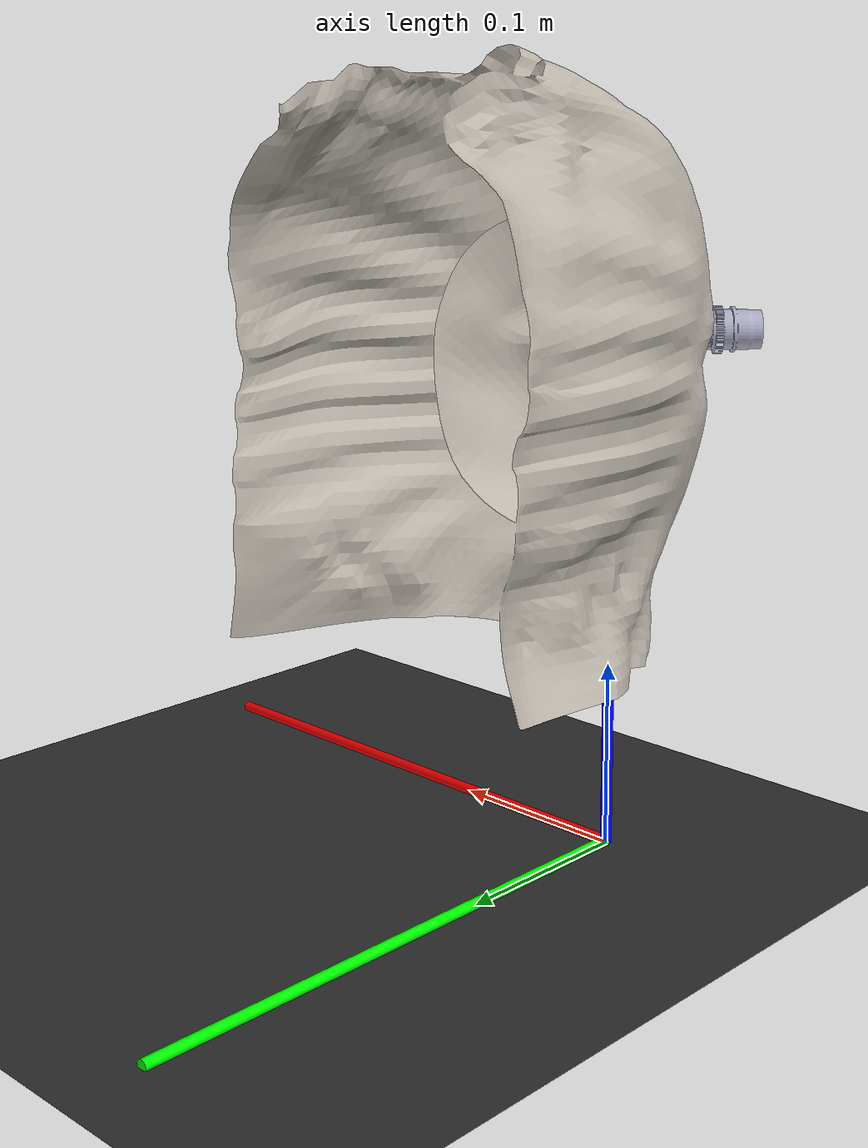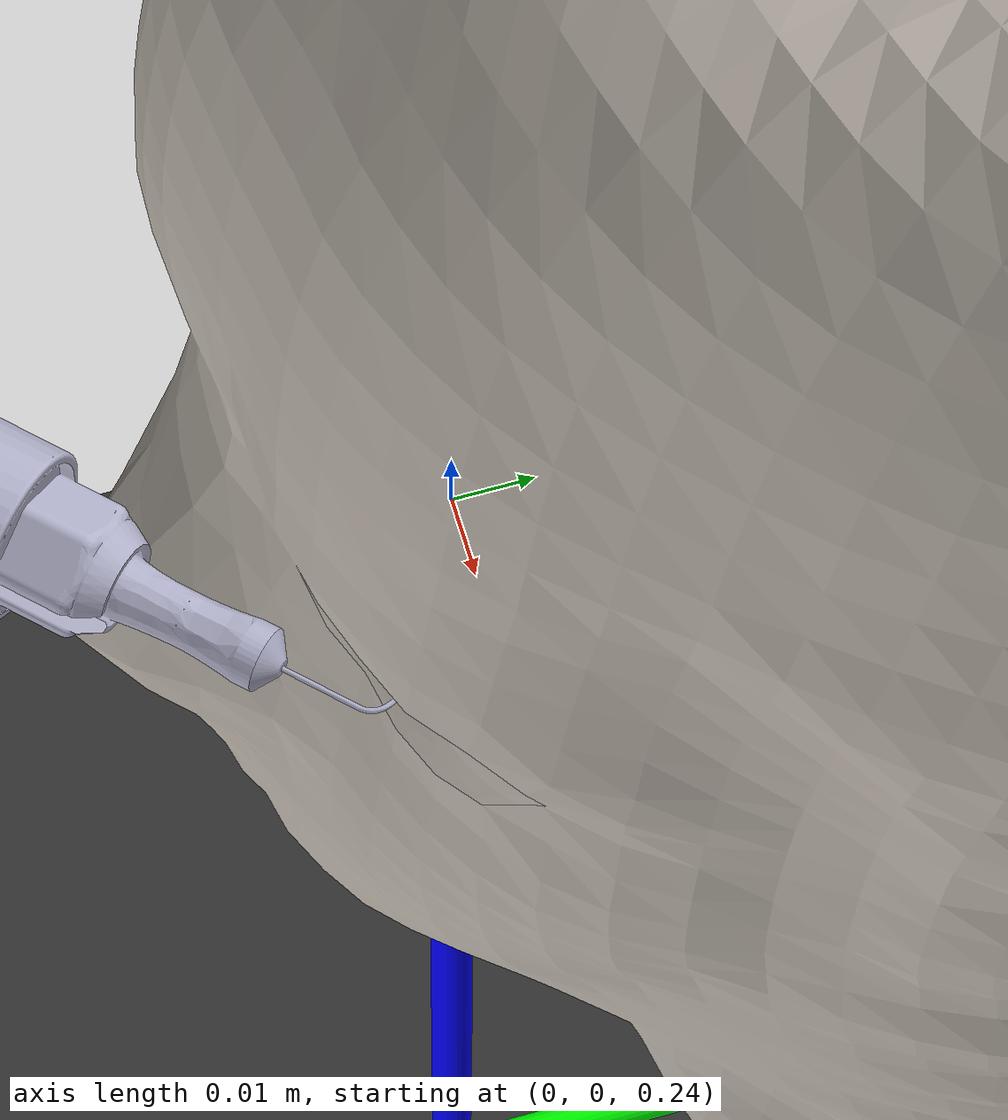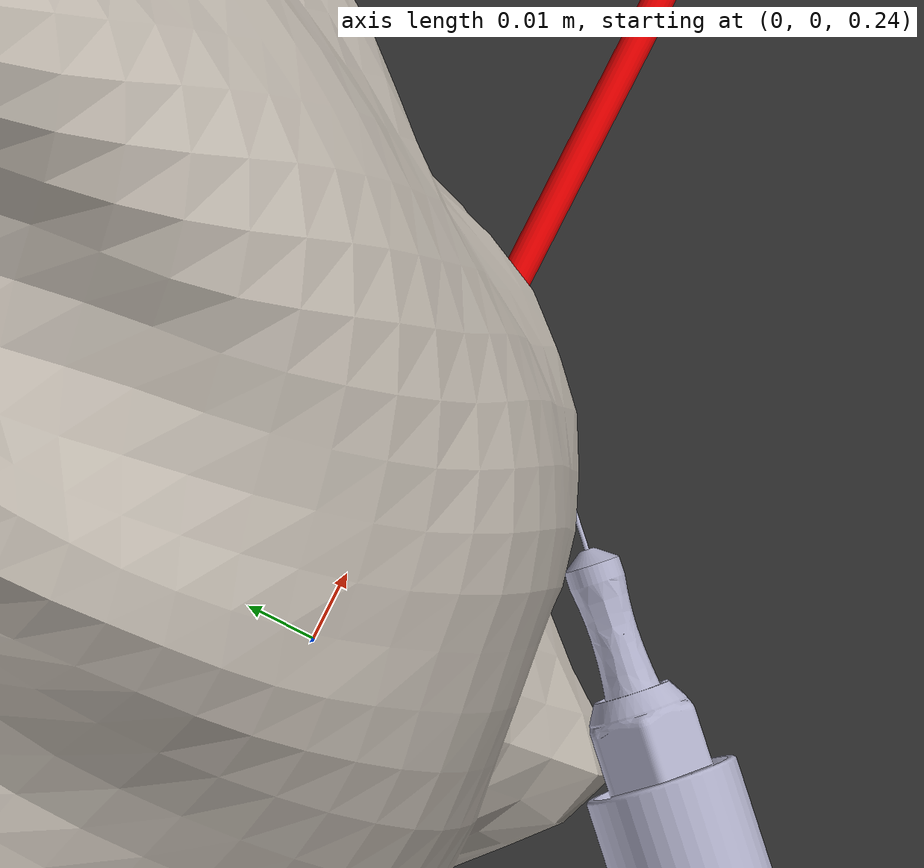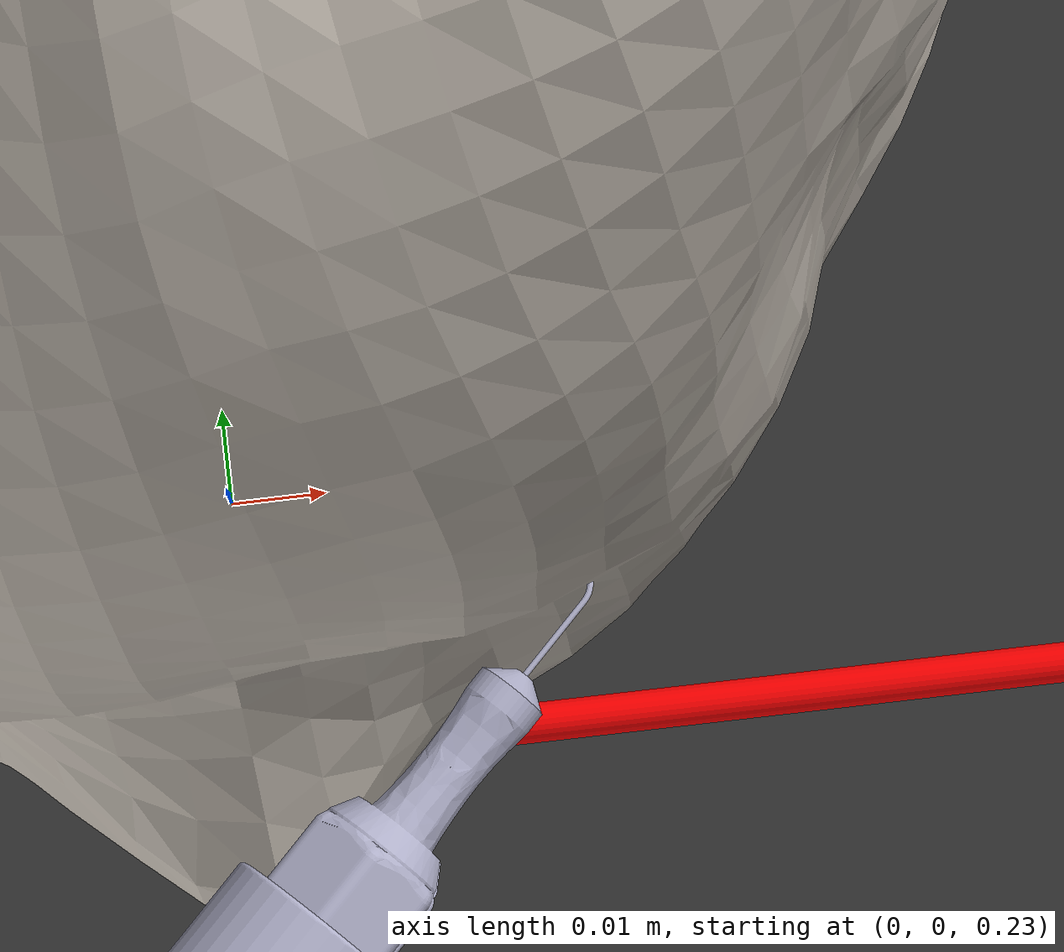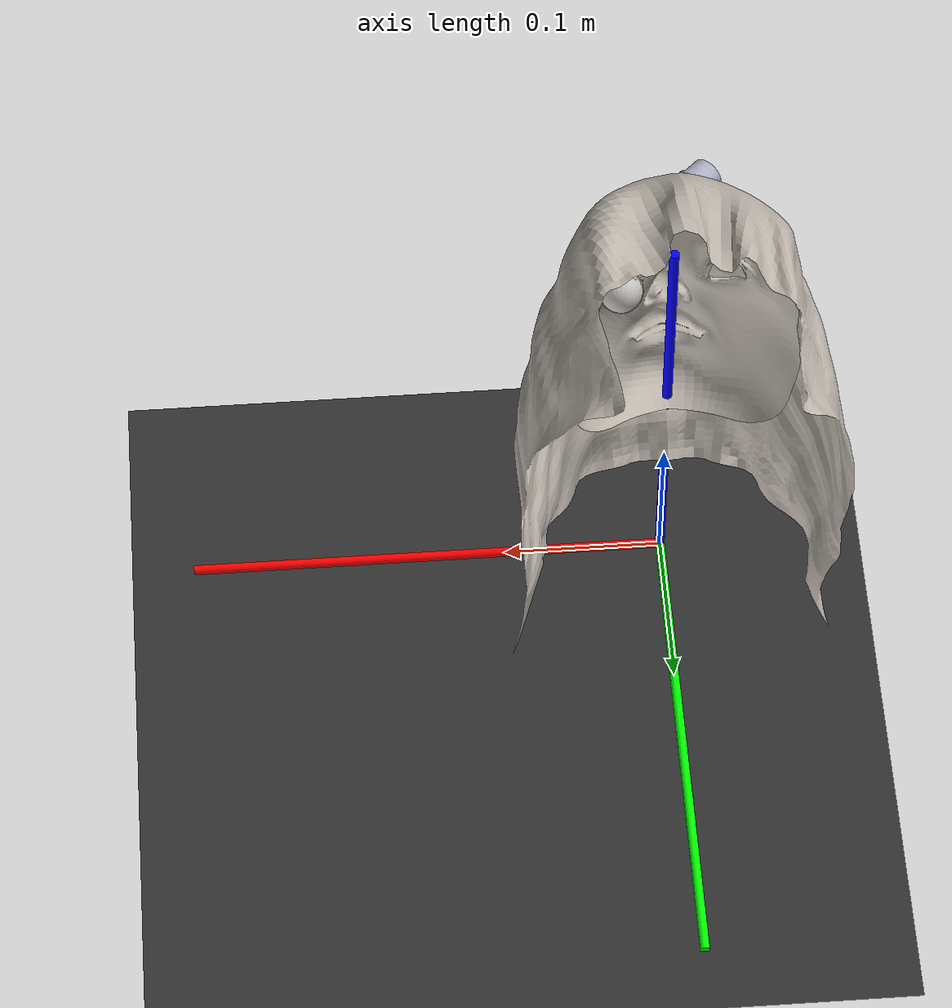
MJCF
<mujoco model="Eye Visualization">
  <compiler angle="degree" meshdir="../meshes" texturedir="../textures"/>

  <!-- Include shared assets -->
  <include file="eye_assets.xml"/>

  <!-- Include physics parameters -->
  <include file="eye_physics.xml"/>

  <!-- Include coordinate axes -->
  <include file="eye_axes.xml"/>

  <!-- Include lens visualization (trajectory markers) -->
  <include file="lens_visualization_projected.xml"/>

  <visual>
    <global offwidth="1920" offheight="1080"/>
    <quality shadowsize="4096"/>
  </visual>

  <worldbody>
    <!-- Lighting setup -->
    <light name="top_light" pos="0 0 5" dir="0 0 -1" diffuse="1 1 1"/>
    <light name="side_light" pos="1 0 1" dir="-1 0 -0.5" diffuse="0.5 0.5 0.5"/>

    <!-- Ground plane -->
    <geom type="plane" size="1 1 0.1" rgba="0.2 0.2 0.2 1"/>
  </worldbody>

  <!-- Include shared eye body -->
  <include file="eye_body.xml"/>
</mujoco>

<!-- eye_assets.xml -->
<mujoco>
  <!-- Shared assets for eye scene -->
  <asset>
    <!-- Load eye component meshes -->
    <mesh name="cornea" file="Cornea_L.obj"/>
    <mesh name="eye_interior" file="EyeInterior_L.obj"/>
    <mesh name="eye" file="Eye_L.obj"/>
    <mesh name="eye_wet" file="EyeWet_L.obj"/>
    <mesh name="lens" file="Lens_L_extracted.obj"/>
    <mesh name="inner_eyelid" file="Inner_Eyelid_L.obj"/>
    <mesh name="tear_duct" file="TearDuct_L.obj"/>
    <mesh name="cloth" file="Cloth_L.obj"/>
    <mesh name="face" file="Face_L.obj"/>

    <!-- Load surgical tool -->
    <mesh name="diathermic_tip" file="tools/diathermic_tip.obj" scale="0.001 0.001 0.001"/>

    <!-- Textures -->
    <texture name="lens_texture" type="2d" file="lens_uv_map.png"/>
    <texture name="eye_texture" type="2d" file="INNER_EYE_1_Base_color.png"/>
    <texture name="face_texture" type="2d" file="Eye-Face_Medium02.png"/>
    <texture name="cloth_texture" type="2d" file="Cloth_Color.png"/>

    <!-- Materials -->
    <material name="lens_mat" texture="lens_texture" specular="0.5" shininess="0.8"/>
    <material name="eye_mat" texture="eye_texture" specular="0.3" shininess="0.5"/>
    <material name="cornea_mat" rgba="0.9 0.95 1.0 0.3" specular="1.0" shininess="1.0"/>
    <material name="eyelid_mat" rgba="0.95 0.8 0.75 1.0"/>
    <material name="wet_mat" rgba="1.0 1.0 1.0 0.1" specular="1.0" shininess="1.0"/>
    <material name="cloth_mat" texture="cloth_texture" specular="0.2" shininess="0.35" reflectance="0.0"/>
    <material name="face_mat" texture="face_texture" specular="0.3" shininess="0.3"/>
    <material name="tool_mat" rgba="0.7 0.7 0.8 1.0" specular="0.8" shininess="0.9"/>
  </asset>
</mujoco>

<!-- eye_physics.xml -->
<mujoco>
  <!-- Physics simulation parameters -->
  <option timestep="0.5" gravity="0 0 -9.81">
    <flag contact="enable"/>
  </option>
</mujoco>

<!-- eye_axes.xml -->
<mujoco>
  <!-- Coordinate axes visualization -->
  <worldbody>
    <geom name="x_axis" type="cylinder" size="0.003 0.15" pos="0.15 0 0.001"
          euler="0 90 0" rgba="1 0 0 1" contype="0" conaffinity="0"/>
    <geom name="y_axis" type="cylinder" size="0.003 0.15" pos="0 0.15 0.001"
          euler="90 0 0" rgba="0 1 0 1" contype="0" conaffinity="0"/>
    <geom name="z_axis" type="cylinder" size="0.003 0.15" pos="0 0 0.15"
          euler="0 0 0" rgba="0 0 1 1" contype="0" conaffinity="0"/>
  </worldbody>
</mujoco>

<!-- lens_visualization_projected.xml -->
<mujoco>
  <worldbody>
    <!-- LENS VISUALIZATION - PROJECTED TRAJECTORY ONLY -->
    <!-- Lens geometric center -->
    <body name="lens_center_marker" pos="0.030893 -0.007080 0.270276">
      <geom name="lens_center_sphere" type="sphere" size="0.0002" rgba="0 1 0 0.8" contype="0" conaffinity="0"/>
    </body>

    <!-- Projected trajectory points (100 points) -->
    <body name="trajectory_point_0" pos="0.030900 -0.007950 0.273375">
      <geom name="traj_marker_0" type="sphere" size="0.0001" rgba="1 0 1 0.8" contype="0" conaffinity="0"/>
    </body>
    <body name="trajectory_point_1" pos="0.031175 -0.007950 0.273350">
      <geom name="traj_marker_1" type="sphere" size="0.0001" rgba="1 0 1 0.8" contype="0" conaffinity="0"/>
    </body>
    <body name="trajectory_point_2" pos="0.031175 -0.007950 0.273350">
      <geom name="traj_marker_2" type="sphere" size="0.0001" rgba="1 0 1 0.8" contype="0" conaffinity="0"/>
    </body>
    <body name="trajectory_point_3" pos="0.031525 -0.007950 0.273325">
      <geom name="traj_marker_3" type="sphere" size="0.0001" rgba="1 0 1 0.8" contype="0" conaffinity="0"/>
    </body>
    <body name="trajectory_point_4" pos="0.031775 -0.007950 0.273250">
      <geom name="traj_marker_4" type="sphere" size="0.0001" rgba="1 0 1 0.8" contype="0" conaffinity="0"/>
    </body>
    <body name="trajectory_point_5" pos="0.031775 -0.007950 0.273250">
      <geom name="traj_marker_5" type="sphere" size="0.0001" rgba="1 0 1 0.8" contype="0" conaffinity="0"/>
    </body>
    <body name="trajectory_point_6" pos="0.032100 -0.007950 0.273150">
      <geom name="traj_marker_6" type="sphere" size="0.0001" rgba="1 0 1 0.8" contype="0" conaffinity="0"/>
    </body>
    <body name="trajectory_point_7" pos="0.032325 -0.007950 0.273025">
      <geom name="traj_marker_7" type="sphere" size="0.0001" rgba="1 0 1 0.8" contype="0" conaffinity="0"/>
    </body>
    <body name="trajectory_point_8" pos="0.032325 -0.007950 0.273025">
      <geom name="traj_marker_8" type="sphere" size="0.0001" rgba="1 0 1 0.8" contype="0" conaffinity="0"/>
    </body>
    <body name="trajectory_point_9" pos="0.032625 -0.007950 0.272875">
      <geom name="traj_marker_9" type="sphere" size="0.0001" rgba="1 0 1 0.8" contype="0" conaffinity="0"/>
    </body>
    <body name="trajectory_point_10" pos="0.032850 -0.007950 0.272700">
      <geom name="traj_marker_10" type="sphere" size="0.0001" rgba="1 0 1 0.8" contype="0" conaffinity="0"/>
    </body>
    <body name="trajectory_point_11" pos="0.032850 -0.007950 0.272700">
      <geom name="traj_marker_11" type="sphere" size="0.0001" rgba="1 0 1 0.8" contype="0" conaffinity="0"/>
    </body>
    <body name="trajectory_point_12" pos="0.033100 -0.007950 0.272475">
      <geom name="traj_marker_12" type="sphere" size="0.0001" rgba="1 0 1 0.8" contype="0" conaffinity="0"/>
    </body>
    <body name="trajectory_point_13" pos="0.033250 -0.007950 0.272275">
      <geom name="traj_marker_13" type="sphere" size="0.0001" rgba="1 0 1 0.8" contype="0" conaffinity="0"/>
    </body>
    <body name="trajectory_point_14" pos="0.033250 -0.007950 0.272275">
      <geom name="traj_marker_14" type="sphere" size="0.0001" rgba="1 0 1 0.8" contype="0" conaffinity="0"/>
    </body>
    <body name="trajectory_point_15" pos="0.033475 -0.007950 0.272000">
      <geom name="traj_marker_15" type="sphere" size="0.0001" rgba="1 0 1 0.8" contype="0" conaffinity="0"/>
    </body>
    <body name="trajectory_point_16" pos="0.033475 -0.007950 0.272000">
      <geom name="traj_marker_16" type="sphere" size="0.0001" rgba="1 0 1 0.8" contype="0" conaffinity="0"/>
    </body>
    <body name="trajectory_point_17" pos="0.033625 -0.007950 0.271775">
      <geom name="traj_marker_17" type="sphere" size="0.0001" rgba="1 0 1 0.8" contype="0" conaffinity="0"/>
    </body>
    <body name="trajectory_point_18" pos="0.033775 -0.007950 0.271475">
      <geom name="traj_marker_18" type="sphere" size="0.0001" rgba="1 0 1 0.8" contype="0" conaffinity="0"/>
    </body>
    <body name="trajectory_point_19" pos="0.033775 -0.007950 0.271475">
      <geom name="traj_marker_19" type="sphere" size="0.0001" rgba="1 0 1 0.8" contype="0" conaffinity="0"/>
    </body>
    <body name="trajectory_point_20" pos="0.033850 -0.007950 0.271200">
      <geom name="traj_marker_20" type="sphere" size="0.0001" rgba="1 0 1 0.8" contype="0" conaffinity="0"/>
    </body>
    <body name="trajectory_point_21" pos="0.033950 -0.007950 0.270875">
      <geom name="traj_marker_21" type="sphere" size="0.0001" rgba="1 0 1 0.8" contype="0" conaffinity="0"/>
    </body>
    <body name="trajectory_point_22" pos="0.033950 -0.007950 0.270875">
      <geom name="traj_marker_22" type="sphere" size="0.0001" rgba="1 0 1 0.8" contype="0" conaffinity="0"/>
    </body>
    <body name="trajectory_point_23" pos="0.033975 -0.007950 0.270625">
      <geom name="traj_marker_23" type="sphere" size="0.0001" rgba="1 0 1 0.8" contype="0" conaffinity="0"/>
    </body>
    <body name="trajectory_point_24" pos="0.034025 -0.007950 0.270300">
      <geom name="traj_marker_24" type="sphere" size="0.0001" rgba="1 0 1 0.8" contype="0" conaffinity="0"/>
    </body>
    <body name="trajectory_point_25" pos="0.034025 -0.007950 0.270300">
      <geom name="traj_marker_25" type="sphere" size="0.0001" rgba="1 0 1 0.8" contype="0" conaffinity="0"/>
    </body>
    <body name="trajectory_point_26" pos="0.034000 -0.007950 0.270025">
      <geom name="traj_marker_26" type="sphere" size="0.0001" rgba="1 0 1 0.8" contype="0" conaffinity="0"/>
    </body>
    <body name="trajectory_point_27" pos="0.033950 -0.007950 0.269675">
      <geom name="traj_marker_27" type="sphere" size="0.0001" rgba="1 0 1 0.8" contype="0" conaffinity="0"/>
    </body>
    <body name="trajectory_point_28" pos="0.033950 -0.007950 0.269675">
      <geom name="traj_marker_28" type="sphere" size="0.0001" rgba="1 0 1 0.8" contype="0" conaffinity="0"/>
    </body>
    <body name="trajectory_point_29" pos="0.033875 -0.007950 0.269425">
      <geom name="traj_marker_29" type="sphere" size="0.0001" rgba="1 0 1 0.8" contype="0" conaffinity="0"/>
    </body>
    <body name="trajectory_point_30" pos="0.033875 -0.007950 0.269425">
      <geom name="traj_marker_30" type="sphere" size="0.0001" rgba="1 0 1 0.8" contype="0" conaffinity="0"/>
    </body>
    <body name="trajectory_point_31" pos="0.033775 -0.007950 0.269100">
      <geom name="traj_marker_31" type="sphere" size="0.0001" rgba="1 0 1 0.8" contype="0" conaffinity="0"/>
    </body>
    <body name="trajectory_point_32" pos="0.033625 -0.007950 0.268850">
      <geom name="traj_marker_32" type="sphere" size="0.0001" rgba="1 0 1 0.8" contype="0" conaffinity="0"/>
    </body>
    <body name="trajectory_point_33" pos="0.033625 -0.007950 0.268850">
      <geom name="traj_marker_33" type="sphere" size="0.0001" rgba="1 0 1 0.8" contype="0" conaffinity="0"/>
    </body>
    <body name="trajectory_point_34" pos="0.033475 -0.007950 0.268550">
      <geom name="traj_marker_34" type="sphere" size="0.0001" rgba="1 0 1 0.8" contype="0" conaffinity="0"/>
    </body>
    <body name="trajectory_point_35" pos="0.033325 -0.007950 0.268350">
      <geom name="traj_marker_35" type="sphere" size="0.0001" rgba="1 0 1 0.8" contype="0" conaffinity="0"/>
    </body>
    <body name="trajectory_point_36" pos="0.033325 -0.007950 0.268350">
      <geom name="traj_marker_36" type="sphere" size="0.0001" rgba="1 0 1 0.8" contype="0" conaffinity="0"/>
    </body>
    <body name="trajectory_point_37" pos="0.033100 -0.007950 0.268075">
      <geom name="traj_marker_37" type="sphere" size="0.0001" rgba="1 0 1 0.8" contype="0" conaffinity="0"/>
    </body>
    <body name="trajectory_point_38" pos="0.033100 -0.007950 0.268075">
      <geom name="traj_marker_38" type="sphere" size="0.0001" rgba="1 0 1 0.8" contype="0" conaffinity="0"/>
    </body>
    <body name="trajectory_point_39" pos="0.032875 -0.007950 0.267900">
      <geom name="traj_marker_39" type="sphere" size="0.0001" rgba="1 0 1 0.8" contype="0" conaffinity="0"/>
    </body>
    <body name="trajectory_point_40" pos="0.032625 -0.007950 0.267700">
      <geom name="traj_marker_40" type="sphere" size="0.0001" rgba="1 0 1 0.8" contype="0" conaffinity="0"/>
    </body>
    <body name="trajectory_point_41" pos="0.032625 -0.007950 0.267700">
      <geom name="traj_marker_41" type="sphere" size="0.0001" rgba="1 0 1 0.8" contype="0" conaffinity="0"/>
    </body>
    <body name="trajectory_point_42" pos="0.032400 -0.007950 0.267575">
      <geom name="traj_marker_42" type="sphere" size="0.0001" rgba="1 0 1 0.8" contype="0" conaffinity="0"/>
    </body>
    <body name="trajectory_point_43" pos="0.032100 -0.007950 0.267400">
      <geom name="traj_marker_43" type="sphere" size="0.0001" rgba="1 0 1 0.8" contype="0" conaffinity="0"/>
    </body>
    <body name="trajectory_point_44" pos="0.032100 -0.007950 0.267400">
      <geom name="traj_marker_44" type="sphere" size="0.0001" rgba="1 0 1 0.8" contype="0" conaffinity="0"/>
    </body>
    <body name="trajectory_point_45" pos="0.031850 -0.007950 0.267325">
      <geom name="traj_marker_45" type="sphere" size="0.0001" rgba="1 0 1 0.8" contype="0" conaffinity="0"/>
    </body>
    <body name="trajectory_point_46" pos="0.031525 -0.007950 0.267225">
      <geom name="traj_marker_46" type="sphere" size="0.0001" rgba="1 0 1 0.8" contype="0" conaffinity="0"/>
    </body>
    <body name="trajectory_point_47" pos="0.031525 -0.007950 0.267225">
      <geom name="traj_marker_47" type="sphere" size="0.0001" rgba="1 0 1 0.8" contype="0" conaffinity="0"/>
    </body>
    <body name="trajectory_point_48" pos="0.031250 -0.007850 0.266825">
      <geom name="traj_marker_48" type="sphere" size="0.0001" rgba="1 0 1 0.8" contype="0" conaffinity="0"/>
    </body>
    <body name="trajectory_point_49" pos="0.031250 -0.007850 0.266825">
      <geom name="traj_marker_49" type="sphere" size="0.0001" rgba="1 0 1 0.8" contype="0" conaffinity="0"/>
    </body>
    <body name="trajectory_point_50" pos="0.030900 -0.007850 0.266800">
      <geom name="traj_marker_50" type="sphere" size="0.0001" rgba="1 0 1 0.8" contype="0" conaffinity="0"/>
    </body>
    <body name="trajectory_point_51" pos="0.030550 -0.007850 0.266825">
      <geom name="traj_marker_51" type="sphere" size="0.0001" rgba="1 0 1 0.8" contype="0" conaffinity="0"/>
    </body>
    <body name="trajectory_point_52" pos="0.030550 -0.007850 0.266825">
      <geom name="traj_marker_52" type="sphere" size="0.0001" rgba="1 0 1 0.8" contype="0" conaffinity="0"/>
    </body>
    <body name="trajectory_point_53" pos="0.030275 -0.007950 0.267225">
      <geom name="traj_marker_53" type="sphere" size="0.0001" rgba="1 0 1 0.8" contype="0" conaffinity="0"/>
    </body>
    <body name="trajectory_point_54" pos="0.030025 -0.007950 0.267300">
      <geom name="traj_marker_54" type="sphere" size="0.0001" rgba="1 0 1 0.8" contype="0" conaffinity="0"/>
    </body>
    <body name="trajectory_point_55" pos="0.029875 -0.007850 0.266950">
      <geom name="traj_marker_55" type="sphere" size="0.0001" rgba="1 0 1 0.8" contype="0" conaffinity="0"/>
    </body>
    <body name="trajectory_point_56" pos="0.029700 -0.007950 0.267400">
      <geom name="traj_marker_56" type="sphere" size="0.0001" rgba="1 0 1 0.8" contype="0" conaffinity="0"/>
    </body>
    <body name="trajectory_point_57" pos="0.029250 -0.007850 0.267225">
      <geom name="traj_marker_57" type="sphere" size="0.0001" rgba="1 0 1 0.8" contype="0" conaffinity="0"/>
    </body>
    <body name="trajectory_point_58" pos="0.029250 -0.007850 0.267225">
      <geom name="traj_marker_58" type="sphere" size="0.0001" rgba="1 0 1 0.8" contype="0" conaffinity="0"/>
    </body>
    <body name="trajectory_point_59" pos="0.028950 -0.007850 0.267400">
      <geom name="traj_marker_59" type="sphere" size="0.0001" rgba="1 0 1 0.8" contype="0" conaffinity="0"/>
    </body>
    <body name="trajectory_point_60" pos="0.028700 -0.007850 0.267600">
      <geom name="traj_marker_60" type="sphere" size="0.0001" rgba="1 0 1 0.8" contype="0" conaffinity="0"/>
    </body>
    <body name="trajectory_point_61" pos="0.028700 -0.007850 0.267600">
      <geom name="traj_marker_61" type="sphere" size="0.0001" rgba="1 0 1 0.8" contype="0" conaffinity="0"/>
    </body>
    <body name="trajectory_point_62" pos="0.028450 -0.007850 0.267800">
      <geom name="traj_marker_62" type="sphere" size="0.0001" rgba="1 0 1 0.8" contype="0" conaffinity="0"/>
    </body>
    <body name="trajectory_point_63" pos="0.028225 -0.007850 0.268075">
      <geom name="traj_marker_63" type="sphere" size="0.0001" rgba="1 0 1 0.8" contype="0" conaffinity="0"/>
    </body>
    <body name="trajectory_point_64" pos="0.028225 -0.007850 0.268075">
      <geom name="traj_marker_64" type="sphere" size="0.0001" rgba="1 0 1 0.8" contype="0" conaffinity="0"/>
    </body>
    <body name="trajectory_point_65" pos="0.028000 -0.007850 0.268350">
      <geom name="traj_marker_65" type="sphere" size="0.0001" rgba="1 0 1 0.8" contype="0" conaffinity="0"/>
    </body>
    <body name="trajectory_point_66" pos="0.028000 -0.007850 0.268350">
      <geom name="traj_marker_66" type="sphere" size="0.0001" rgba="1 0 1 0.8" contype="0" conaffinity="0"/>
    </body>
    <body name="trajectory_point_67" pos="0.027850 -0.007850 0.268650">
      <geom name="traj_marker_67" type="sphere" size="0.0001" rgba="1 0 1 0.8" contype="0" conaffinity="0"/>
    </body>
    <body name="trajectory_point_68" pos="0.027700 -0.007850 0.268950">
      <geom name="traj_marker_68" type="sphere" size="0.0001" rgba="1 0 1 0.8" contype="0" conaffinity="0"/>
    </body>
    <body name="trajectory_point_69" pos="0.027700 -0.007850 0.268950">
      <geom name="traj_marker_69" type="sphere" size="0.0001" rgba="1 0 1 0.8" contype="0" conaffinity="0"/>
    </body>
    <body name="trajectory_point_70" pos="0.027600 -0.007850 0.269275">
      <geom name="traj_marker_70" type="sphere" size="0.0001" rgba="1 0 1 0.8" contype="0" conaffinity="0"/>
    </body>
    <body name="trajectory_point_71" pos="0.027600 -0.007850 0.269275">
      <geom name="traj_marker_71" type="sphere" size="0.0001" rgba="1 0 1 0.8" contype="0" conaffinity="0"/>
    </body>
    <body name="trajectory_point_72" pos="0.027500 -0.007850 0.269600">
      <geom name="traj_marker_72" type="sphere" size="0.0001" rgba="1 0 1 0.8" contype="0" conaffinity="0"/>
    </body>
    <body name="trajectory_point_73" pos="0.027450 -0.007850 0.269950">
      <geom name="traj_marker_73" type="sphere" size="0.0001" rgba="1 0 1 0.8" contype="0" conaffinity="0"/>
    </body>
    <body name="trajectory_point_74" pos="0.027450 -0.007850 0.269950">
      <geom name="traj_marker_74" type="sphere" size="0.0001" rgba="1 0 1 0.8" contype="0" conaffinity="0"/>
    </body>
    <body name="trajectory_point_75" pos="0.027775 -0.007950 0.270300">
      <geom name="traj_marker_75" type="sphere" size="0.0001" rgba="1 0 1 0.8" contype="0" conaffinity="0"/>
    </body>
    <body name="trajectory_point_76" pos="0.027450 -0.007850 0.270625">
      <geom name="traj_marker_76" type="sphere" size="0.0001" rgba="1 0 1 0.8" contype="0" conaffinity="0"/>
    </body>
    <body name="trajectory_point_77" pos="0.027450 -0.007850 0.270625">
      <geom name="traj_marker_77" type="sphere" size="0.0001" rgba="1 0 1 0.8" contype="0" conaffinity="0"/>
    </body>
    <body name="trajectory_point_78" pos="0.027500 -0.007850 0.270950">
      <geom name="traj_marker_78" type="sphere" size="0.0001" rgba="1 0 1 0.8" contype="0" conaffinity="0"/>
    </body>
    <body name="trajectory_point_79" pos="0.027600 -0.007850 0.271275">
      <geom name="traj_marker_79" type="sphere" size="0.0001" rgba="1 0 1 0.8" contype="0" conaffinity="0"/>
    </body>
    <body name="trajectory_point_80" pos="0.027600 -0.007850 0.271275">
      <geom name="traj_marker_80" type="sphere" size="0.0001" rgba="1 0 1 0.8" contype="0" conaffinity="0"/>
    </body>
    <body name="trajectory_point_81" pos="0.028025 -0.007950 0.271475">
      <geom name="traj_marker_81" type="sphere" size="0.0001" rgba="1 0 1 0.8" contype="0" conaffinity="0"/>
    </body>
    <body name="trajectory_point_82" pos="0.028150 -0.007950 0.271700">
      <geom name="traj_marker_82" type="sphere" size="0.0001" rgba="1 0 1 0.8" contype="0" conaffinity="0"/>
    </body>
    <body name="trajectory_point_83" pos="0.028150 -0.007950 0.271700">
      <geom name="traj_marker_83" type="sphere" size="0.0001" rgba="1 0 1 0.8" contype="0" conaffinity="0"/>
    </body>
    <body name="trajectory_point_84" pos="0.028300 -0.007950 0.272000">
      <geom name="traj_marker_84" type="sphere" size="0.0001" rgba="1 0 1 0.8" contype="0" conaffinity="0"/>
    </body>
    <body name="trajectory_point_85" pos="0.028475 -0.007950 0.272200">
      <geom name="traj_marker_85" type="sphere" size="0.0001" rgba="1 0 1 0.8" contype="0" conaffinity="0"/>
    </body>
    <body name="trajectory_point_86" pos="0.028475 -0.007950 0.272200">
      <geom name="traj_marker_86" type="sphere" size="0.0001" rgba="1 0 1 0.8" contype="0" conaffinity="0"/>
    </body>
    <body name="trajectory_point_87" pos="0.028700 -0.007950 0.272475">
      <geom name="traj_marker_87" type="sphere" size="0.0001" rgba="1 0 1 0.8" contype="0" conaffinity="0"/>
    </body>
    <body name="trajectory_point_88" pos="0.028700 -0.007950 0.272475">
      <geom name="traj_marker_88" type="sphere" size="0.0001" rgba="1 0 1 0.8" contype="0" conaffinity="0"/>
    </body>
    <body name="trajectory_point_89" pos="0.028925 -0.007950 0.272650">
      <geom name="traj_marker_89" type="sphere" size="0.0001" rgba="1 0 1 0.8" contype="0" conaffinity="0"/>
    </body>
    <body name="trajectory_point_90" pos="0.029175 -0.007950 0.272875">
      <geom name="traj_marker_90" type="sphere" size="0.0001" rgba="1 0 1 0.8" contype="0" conaffinity="0"/>
    </body>
    <body name="trajectory_point_91" pos="0.029175 -0.007950 0.272875">
      <geom name="traj_marker_91" type="sphere" size="0.0001" rgba="1 0 1 0.8" contype="0" conaffinity="0"/>
    </body>
    <body name="trajectory_point_92" pos="0.029400 -0.007950 0.273000">
      <geom name="traj_marker_92" type="sphere" size="0.0001" rgba="1 0 1 0.8" contype="0" conaffinity="0"/>
    </body>
    <body name="trajectory_point_93" pos="0.029700 -0.007950 0.273150">
      <geom name="traj_marker_93" type="sphere" size="0.0001" rgba="1 0 1 0.8" contype="0" conaffinity="0"/>
    </body>
    <body name="trajectory_point_94" pos="0.029700 -0.007950 0.273150">
      <geom name="traj_marker_94" type="sphere" size="0.0001" rgba="1 0 1 0.8" contype="0" conaffinity="0"/>
    </body>
    <body name="trajectory_point_95" pos="0.029950 -0.007950 0.273225">
      <geom name="traj_marker_95" type="sphere" size="0.0001" rgba="1 0 1 0.8" contype="0" conaffinity="0"/>
    </body>
    <body name="trajectory_point_96" pos="0.030275 -0.007950 0.273325">
      <geom name="traj_marker_96" type="sphere" size="0.0001" rgba="1 0 1 0.8" contype="0" conaffinity="0"/>
    </body>
    <body name="trajectory_point_97" pos="0.030275 -0.007950 0.273325">
      <geom name="traj_marker_97" type="sphere" size="0.0001" rgba="1 0 1 0.8" contype="0" conaffinity="0"/>
    </body>
    <body name="trajectory_point_98" pos="0.030550 -0.007950 0.273350">
      <geom name="traj_marker_98" type="sphere" size="0.0001" rgba="1 0 1 0.8" contype="0" conaffinity="0"/>
    </body>
    <body name="trajectory_point_99" pos="0.030550 -0.007950 0.273350">
      <geom name="traj_marker_99" type="sphere" size="0.0001" rgba="1 0 1 0.8" contype="0" conaffinity="0"/>
    </body>
  </worldbody>
</mujoco>

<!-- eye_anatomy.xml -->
<mujoco>
  <!-- Eye anatomical components -->
  <worldbody>
    <body name="eye_assembly" pos="0 0 0.1">
      <!-- Lens with UV map -->
      <geom name="lens_geom" type="mesh" mesh="lens"
            material="lens_mat" contype="0" conaffinity="0" group="0"/>

      <!-- Eye interior (base) -->
      <geom name="eye_interior_geom" type="mesh" mesh="eye_interior"
            material="eye_mat" contype="0" conaffinity="0" group="1"/>

      <!-- Main eye -->
      <geom name="eye_geom" type="mesh" mesh="eye"
            material="eye_mat" contype="0" conaffinity="0" group="1"/>

      <!-- Cornea (transparent) -->
      <geom name="cornea_geom" type="mesh" mesh="cornea"
            material="cornea_mat" contype="0" conaffinity="0" group="1"/>

      <!-- Wet layer (glossy effect) -->
      <geom name="eye_wet_geom" type="mesh" mesh="eye_wet"
            material="wet_mat" contype="0" conaffinity="0" group="1"/>

      <!-- Inner eyelid -->
      <geom name="inner_eyelid_geom" type="mesh" mesh="inner_eyelid"
            material="eyelid_mat" contype="0" conaffinity="0" group="1"/>

      <!-- Tear duct -->
      <geom name="tear_duct_geom" type="mesh" mesh="tear_duct"
            material="eyelid_mat" contype="0" conaffinity="0" group="1"/>

      <!-- Cloth/skin -->
      <geom name="cloth_geom" type="mesh" mesh="cloth"
            material="cloth_mat" contype="0" conaffinity="0" group="1"/>

      <!-- Face -->
      <geom name="face_geom" type="mesh" mesh="face"
            material="face_mat" contype="0" conaffinity="0" group="1"/>
    </body>
  </worldbody>
</mujoco>

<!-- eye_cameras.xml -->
<mujoco>
  <!-- Camera positions for eye visualization -->
  <worldbody>
    <!-- Camera rig positioned relative to eye -->
    <body name="camera_rig" pos="0 0 0.1">
      <!-- Top view: looking down at the eye from above -->
      <camera name="top_view" pos="0.03 -0.1 0.175" euler="90 0 0" fovy="55"/>

      <!-- Angle view: perspective view from the side -->
      <camera name="angle_view" pos="0.2 -0.1 0.175" euler="90 70 0" fovy="40"/>
    </body>
  </worldbody>
</mujoco>

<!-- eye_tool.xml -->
<mujoco>
  <!-- Surgical tool (diathermic tip) -->
  <worldbody>
    <body name="diathermic_tip" pos="0.04 -0.015 0.27" euler="0 0 45" mocap="true">
      <!-- Visual geometry -->
      <geom name="tool_geom" type="mesh" mesh="diathermic_tip"
            material="tool_mat" contype="0" conaffinity="0"/>

      <!-- Tool tip marker (red sphere) -->
      <site name="tool_tip" pos="0 0.01 0.0025" size="0.0005" rgba="1 0 0 1"/>

      <!-- On-tool camera (end effector view) -->
      <camera name="tool_view" pos="0 -0.02 0.015" euler="90 0 0" fovy="25"/>
    </body>
  </worldbody>
</mujoco>

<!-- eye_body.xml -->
<mujoco>
  <!-- Eye body assembly - includes all eye components -->

  <!-- Eye anatomical geometry (lens, cornea, etc.) -->
  <include file="eye_anatomy.xml"/>

  <!-- Cameras for visualization -->
  <include file="eye_cameras.xml"/>

  <!-- Surgical tool -->
  <include file="eye_tool.xml"/>
</mujoco>
